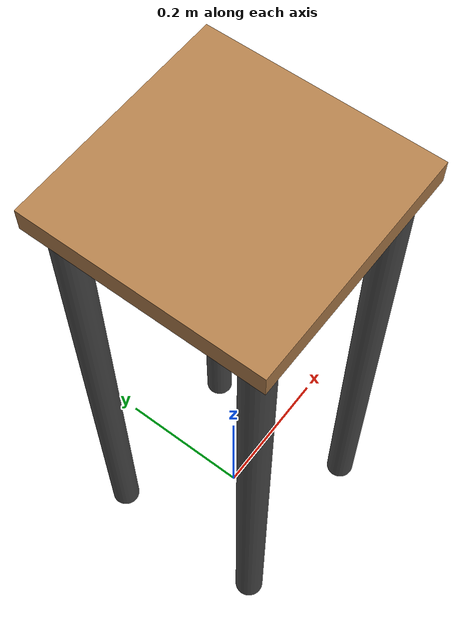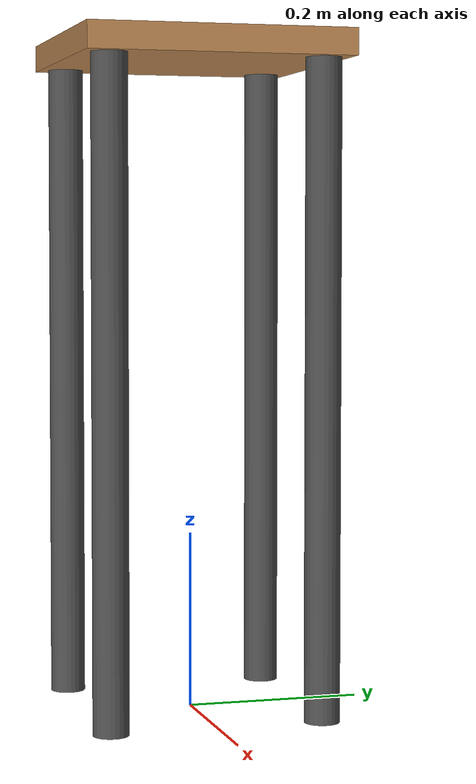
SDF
<sdf version="1.5">
  <model name="Table">
    <static>true</static>
    <link name="link">
      <collision name="surface">
        <pose>0 0 0.75 0 0 0</pose>
        <geometry>
          <box>
            <size>0.3 0.3 0.03</size>
          </box>
        </geometry>
        <surface>
          <friction>
            <ode>
              <mu>0.6</mu>
              <mu2>0.6</mu2>
            </ode>
          </friction>
        </surface>
      </collision>
      <visual name="visual1">
        <pose>0 0 0.75 0 0 0</pose>
        <geometry>
          <box>
            <size>0.3 0.3 0.03</size>
          </box>
        </geometry>
        <material>
          <ambient>0.6 0.4 0.2 1</ambient>
          <diffuse>0.7 0.5 0.3 1</diffuse>
          <specular>0.1 0.1 0.05 1</specular>
          <!-- PBR for Ignition, material scripts for gazebo classic-->
          <pbr>
            <metal>
              <albedo_map>package://tiago_sim/models/Table/Table_Diffuse.jpg</albedo_map>
            </metal>
          </pbr>
        </material>
      </visual>
      <collision name="front_left_leg">
        <pose>0.12 0.12 0.375 0 0 0</pose>
        <geometry>
          <cylinder>
            <radius>0.02</radius>
            <length>0.75</length>
          </cylinder>
        </geometry>
      </collision>
      <visual name="front_left_leg">
        <pose>0.12 0.12 0.375 0 0 0</pose>
        <geometry>
          <cylinder>
            <radius>0.02</radius>
            <length>0.75</length>
          </cylinder>
        </geometry>
        <material>
          <ambient>0.2 0.2 0.2 1</ambient>
          <diffuse>0.3 0.3 0.3 1</diffuse>
          <specular>0.1 0.1 0.1 1</specular>
        </material>
      </visual>
      <collision name="front_right_leg">
        <pose>0.12 -0.12 0.375 0 0 0</pose>
        <geometry>
          <cylinder>
            <radius>0.02</radius>
            <length>0.75</length>
          </cylinder>
        </geometry>
      </collision>
      <visual name="front_right_leg">
        <pose>0.12 -0.12 0.375 0 0 0</pose>
        <geometry>
          <cylinder>
            <radius>0.02</radius>
            <length>0.75</length>
          </cylinder>
        </geometry>
        <material>
          <ambient>0.2 0.2 0.2 1</ambient>
          <diffuse>0.3 0.3 0.3 1</diffuse>
          <specular>0.1 0.1 0.1 1</specular>
        </material>
      </visual>
      <collision name="back_right_leg">
        <pose>-0.12 -0.12 0.375 0 0 0</pose>
        <geometry>
          <cylinder>
            <radius>0.02</radius>
            <length>0.75</length>
          </cylinder>
        </geometry>
      </collision>
      <visual name="back_right_leg">
        <pose>-0.12 -0.12 0.375 0 0 0</pose>
        <geometry>
          <cylinder>
            <radius>0.02</radius>
            <length>0.75</length>
          </cylinder>
        </geometry>
        <material>
          <ambient>0.2 0.2 0.2 1</ambient>
          <diffuse>0.3 0.3 0.3 1</diffuse>
          <specular>0.1 0.1 0.1 1</specular>
        </material>
      </visual>
      <collision name="back_left_leg">
        <pose>-0.12 0.12 0.375 0 0 0</pose>
        <geometry>
          <cylinder>
            <radius>0.02</radius>
            <length>0.75</length>
          </cylinder>
        </geometry>
      </collision>
      <visual name="back_left_leg">
        <pose>-0.12 0.12 0.375 0 0 0</pose>
        <geometry>
          <cylinder>
            <radius>0.02</radius>
            <length>0.75</length>
          </cylinder>
        </geometry>
        <material>
          <ambient>0.2 0.2 0.2 1</ambient>
          <diffuse>0.3 0.3 0.3 1</diffuse>
          <specular>0.1 0.1 0.1 1</specular>
        </material>
      </visual>
    </link>
  </model>
</sdf>
